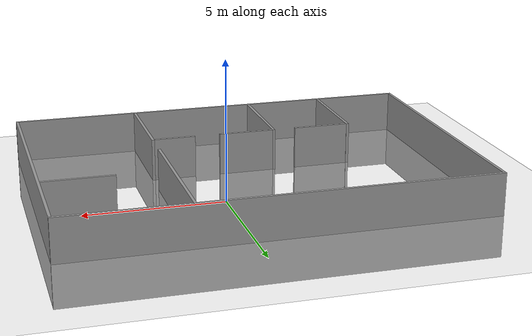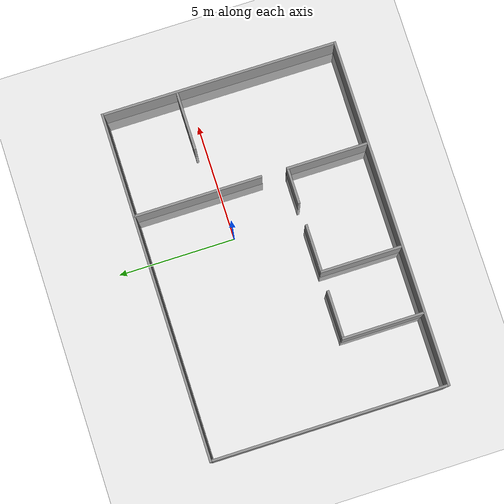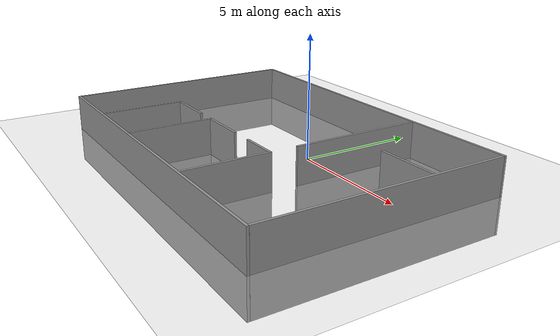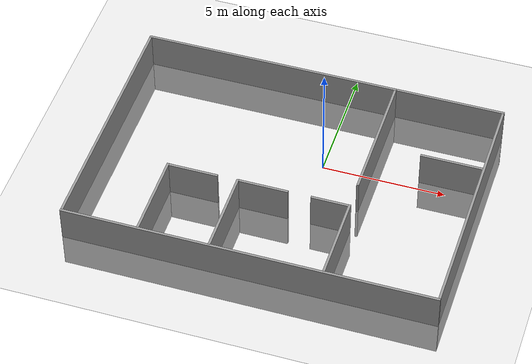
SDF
<sdf version="1.6">
 <world name="default">
  <model name="ground_plane">
   <static>1</static>
   <link name="link">
    <collision name="collision">
     <geometry><plane><normal>0 0 1</normal><size>100 100</size></plane></geometry>
     <surface><friction><ode><mu>100</mu><mu2>50</mu2></ode></friction></surface>
    </collision>
    <visual name="visual">
     <cast_shadows>0</cast_shadows>
     <geometry><plane><normal>0 0 1</normal><size>100 100</size></plane></geometry>
     <material>
      <script><uri>file://media/materials/scripts/gazebo.material</uri><name>Gazebo/Grey</name></script>
     </material>
    </visual>
   </link>
  </model>
  <model name="unit_box">
   <link name="link">
    <inertial>
     <mass>1</mass>
     <inertia>
      <ixx>0.166667</ixx>
      <ixy>0</ixy>
      <ixz>0</ixz>
      <iyy>0.166667</iyy>
      <iyz>0</iyz>
      <izz>0.166667</izz>
     </inertia>
    </inertial>
    <visual name="visual">
     <geometry><box><size>15 0.1 3</size></box></geometry>
     <material>
      <script><name>Gazebo/Grey</name><uri>file://media/materials/scripts/gazebo.material</uri></script>
      <shader type="vertex"><normal_map>__default__</normal_map></shader>
      <ambient>0.3 0.3 0.3 1</ambient>
      <diffuse>0.7 0.7 0.7 1</diffuse>
      <specular>0.01 0.01 0.01 1</specular>
      <emissive>0 0 0 1</emissive>
     </material>
    </visual>
    <collision name="collision">
     <geometry><box><size>15 0.1 3</size></box></geometry>
     <surface>
      <friction>
       <ode><mu>1</mu><mu2>1</mu2><fdir1>0 0 0</fdir1><slip1>0</slip1><slip2>0</slip2></ode>
       <torsional>
        <coefficient>1</coefficient>
        <patch_radius>0</patch_radius>
        <surface_radius>0</surface_radius>
        <use_patch_radius>1</use_patch_radius>
        <ode><slip>0</slip></ode>
       </torsional>
      </friction>
      <bounce><restitution_coefficient>0</restitution_coefficient><threshold>1e+06</threshold></bounce>
      <contact>
       <collide_without_contact>0</collide_without_contact>
       <collide_without_contact_bitmask>1</collide_without_contact_bitmask>
       <collide_bitmask>1</collide_bitmask>
       <ode>
        <soft_cfm>0</soft_cfm>
        <soft_erp>0.2</soft_erp>
        <kp>1e+13</kp>
        <kd>1</kd>
        <max_vel>0.01</max_vel>
        <min_depth>0</min_depth>
       </ode>
       <bullet>
        <split_impulse>1</split_impulse>
        <split_impulse_penetration_threshold>-0.01</split_impulse_penetration_threshold>
        <soft_cfm>0</soft_cfm>
        <soft_erp>0.2</soft_erp>
        <kp>1e+13</kp>
        <kd>1</kd>
       </bullet>
      </contact>
     </surface>
    </collision>
   </link>
   <link name="link_clone">
    <inertial>
     <mass>1</mass>
     <inertia>
      <ixx>0.166667</ixx>
      <ixy>0</ixy>
      <ixz>0</ixz>
      <iyy>0.166667</iyy>
      <iyz>0</iyz>
      <izz>0.166667</izz>
     </inertia>
    </inertial>
    <pose>-0.009482 -10.0996 0 0 -0 0</pose>
    <visual name="visual">
     <geometry><box><size>15 0.1 3</size></box></geometry>
     <material>
      <script><name>Gazebo/Grey</name><uri>file://media/materials/scripts/gazebo.material</uri></script>
      <shader type="vertex"><normal_map>__default__</normal_map></shader>
      <ambient>0.3 0.3 0.3 1</ambient>
      <diffuse>0.7 0.7 0.7 1</diffuse>
      <specular>0.01 0.01 0.01 1</specular>
      <emissive>0 0 0 1</emissive>
     </material>
    </visual>
    <collision name="collision">
     <geometry><box><size>15 0.1 3</size></box></geometry>
     <surface>
      <friction>
       <ode><mu>1</mu><mu2>1</mu2><fdir1>0 0 0</fdir1><slip1>0</slip1><slip2>0</slip2></ode>
       <torsional>
        <coefficient>1</coefficient>
        <patch_radius>0</patch_radius>
        <surface_radius>0</surface_radius>
        <use_patch_radius>1</use_patch_radius>
        <ode><slip>0</slip></ode>
       </torsional>
      </friction>
      <bounce><restitution_coefficient>0</restitution_coefficient><threshold>1e+06</threshold></bounce>
      <contact>
       <collide_without_contact>0</collide_without_contact>
       <collide_without_contact_bitmask>1</collide_without_contact_bitmask>
       <collide_bitmask>1</collide_bitmask>
       <ode>
        <soft_cfm>0</soft_cfm>
        <soft_erp>0.2</soft_erp>
        <kp>1e+13</kp>
        <kd>1</kd>
        <max_vel>0.01</max_vel>
        <min_depth>0</min_depth>
       </ode>
       <bullet>
        <split_impulse>1</split_impulse>
        <split_impulse_penetration_threshold>-0.01</split_impulse_penetration_threshold>
        <soft_cfm>0</soft_cfm>
        <soft_erp>0.2</soft_erp>
        <kp>1e+13</kp>
        <kd>1</kd>
       </bullet>
      </contact>
     </surface>
    </collision>
   </link>
   <link name="link_clone_0">
    <inertial>
     <mass>1</mass>
     <inertia>
      <ixx>0.166667</ixx>
      <ixy>0</ixy>
      <ixz>0</ixz>
      <iyy>0.166667</iyy>
      <iyz>0</iyz>
      <izz>0.166667</izz>
     </inertia>
    </inertial>
    <pose>-7.45497 -5.04923 0 0 -0 0</pose>
    <visual name="visual">
     <geometry><box><size>10 0.1 3</size></box></geometry>
     <material>
      <script><name>Gazebo/Grey</name><uri>file://media/materials/scripts/gazebo.material</uri></script>
      <shader type="vertex"><normal_map>__default__</normal_map></shader>
      <ambient>0.3 0.3 0.3 1</ambient>
      <diffuse>0.7 0.7 0.7 1</diffuse>
      <specular>0.01 0.01 0.01 1</specular>
      <emissive>0 0 0 1</emissive>
     </material>
     <pose>0 0 0 0 -0 1.57</pose>
    </visual>
    <collision name="collision">
     <pose>0 0 0 0 -0 1.57</pose>
     <geometry><box><size>10 0.1 3</size></box></geometry>
     <surface>
      <friction>
       <ode><mu>1</mu><mu2>1</mu2><fdir1>0 0 0</fdir1><slip1>0</slip1><slip2>0</slip2></ode>
       <torsional>
        <coefficient>1</coefficient>
        <patch_radius>0</patch_radius>
        <surface_radius>0</surface_radius>
        <use_patch_radius>1</use_patch_radius>
        <ode><slip>0</slip></ode>
       </torsional>
      </friction>
      <bounce><restitution_coefficient>0</restitution_coefficient><threshold>1e+06</threshold></bounce>
      <contact>
       <collide_without_contact>0</collide_without_contact>
       <collide_without_contact_bitmask>1</collide_without_contact_bitmask>
       <collide_bitmask>1</collide_bitmask>
       <ode>
        <soft_cfm>0</soft_cfm>
        <soft_erp>0.2</soft_erp>
        <kp>1e+13</kp>
        <kd>1</kd>
        <max_vel>0.01</max_vel>
        <min_depth>0</min_depth>
       </ode>
       <bullet>
        <split_impulse>1</split_impulse>
        <split_impulse_penetration_threshold>-0.01</split_impulse_penetration_threshold>
        <soft_cfm>0</soft_cfm>
        <soft_erp>0.2</soft_erp>
        <kp>1e+13</kp>
        <kd>1</kd>
       </bullet>
      </contact>
     </surface>
    </collision>
   </link>
   <link name="link_clone_0_clone">
    <inertial>
     <mass>1</mass>
     <inertia>
      <ixx>0.166667</ixx>
      <ixy>0</ixy>
      <ixz>0</ixz>
      <iyy>0.166667</iyy>
      <iyz>0</iyz>
      <izz>0.166667</izz>
     </inertia>
    </inertial>
    <pose>7.44581 -5.0508 0 0 -0 0</pose>
    <visual name="visual">
     <geometry><box><size>10 0.1 3</size></box></geometry>
     <material>
      <script><name>Gazebo/Grey</name><uri>file://media/materials/scripts/gazebo.material</uri></script>
      <shader type="vertex"><normal_map>__default__</normal_map></shader>
      <ambient>0.3 0.3 0.3 1</ambient>
      <diffuse>0.7 0.7 0.7 1</diffuse>
      <specular>0.01 0.01 0.01 1</specular>
      <emissive>0 0 0 1</emissive>
     </material>
     <pose>0 0 0 0 -0 1.57</pose>
    </visual>
    <collision name="collision">
     <pose>0 0 0 0 -0 1.57</pose>
     <geometry><box><size>10 0.1 3</size></box></geometry>
     <surface>
      <friction>
       <ode><mu>1</mu><mu2>1</mu2><fdir1>0 0 0</fdir1><slip1>0</slip1><slip2>0</slip2></ode>
       <torsional>
        <coefficient>1</coefficient>
        <patch_radius>0</patch_radius>
        <surface_radius>0</surface_radius>
        <use_patch_radius>1</use_patch_radius>
        <ode><slip>0</slip></ode>
       </torsional>
      </friction>
      <bounce><restitution_coefficient>0</restitution_coefficient><threshold>1e+06</threshold></bounce>
      <contact>
       <collide_without_contact>0</collide_without_contact>
       <collide_without_contact_bitmask>1</collide_without_contact_bitmask>
       <collide_bitmask>1</collide_bitmask>
       <ode>
        <soft_cfm>0</soft_cfm>
        <soft_erp>0.2</soft_erp>
        <kp>1e+13</kp>
        <kd>1</kd>
        <max_vel>0.01</max_vel>
        <min_depth>0</min_depth>
       </ode>
       <bullet>
        <split_impulse>1</split_impulse>
        <split_impulse_penetration_threshold>-0.01</split_impulse_penetration_threshold>
        <soft_cfm>0</soft_cfm>
        <soft_erp>0.2</soft_erp>
        <kp>1e+13</kp>
        <kd>1</kd>
       </bullet>
      </contact>
     </surface>
    </collision>
   </link>
   <link name="link_clone_0_clone_0_clone">
    <inertial>
     <mass>1</mass>
     <inertia>
      <ixx>0.166667</ixx>
      <ixy>0</ixy>
      <ixz>0</ixz>
      <iyy>0.166667</iyy>
      <iyz>0</iyz>
      <izz>0.166667</izz>
     </inertia>
    </inertial>
    <pose>2.99854 -2.74784 0 0 -0 0</pose>
    <visual name="visual">
     <geometry><box><size>5.5 0.1 3</size></box></geometry>
     <material>
      <script><name>Gazebo/Grey</name><uri>file://media/materials/scripts/gazebo.material</uri></script>
      <shader type="vertex"><normal_map>__default__</normal_map></shader>
      <ambient>0.3 0.3 0.3 1</ambient>
      <diffuse>0.7 0.7 0.7 1</diffuse>
      <specular>0.01 0.01 0.01 1</specular>
      <emissive>0 0 0 1</emissive>
     </material>
     <pose>0 0 0 0 -0 1.57</pose>
    </visual>
    <collision name="collision">
     <pose>0 0 0 0 -0 1.57</pose>
     <geometry><box><size>5.5 0.1 3</size></box></geometry>
     <surface>
      <friction>
       <ode><mu>1</mu><mu2>1</mu2><fdir1>0 0 0</fdir1><slip1>0</slip1><slip2>0</slip2></ode>
       <torsional>
        <coefficient>1</coefficient>
        <patch_radius>0</patch_radius>
        <surface_radius>0</surface_radius>
        <use_patch_radius>1</use_patch_radius>
        <ode><slip>0</slip></ode>
       </torsional>
      </friction>
      <bounce><restitution_coefficient>0</restitution_coefficient><threshold>1e+06</threshold></bounce>
      <contact>
       <collide_without_contact>0</collide_without_contact>
       <collide_without_contact_bitmask>1</collide_without_contact_bitmask>
       <collide_bitmask>1</collide_bitmask>
       <ode>
        <soft_cfm>0</soft_cfm>
        <soft_erp>0.2</soft_erp>
        <kp>1e+13</kp>
        <kd>1</kd>
        <max_vel>0.01</max_vel>
        <min_depth>0</min_depth>
       </ode>
       <bullet>
        <split_impulse>1</split_impulse>
        <split_impulse_penetration_threshold>-0.01</split_impulse_penetration_threshold>
        <soft_cfm>0</soft_cfm>
        <soft_erp>0.2</soft_erp>
        <kp>1e+13</kp>
        <kd>1</kd>
       </bullet>
      </contact>
     </surface>
    </collision>
   </link>
   <link name="link_clone_0_clone_0_clone_clone">
    <inertial>
     <mass>1</mass>
     <inertia>
      <ixx>0.166667</ixx>
      <ixy>0</ixy>
      <ixz>0</ixz>
      <iyy>0.166667</iyy>
      <iyz>0</iyz>
      <izz>0.166667</izz>
     </inertia>
    </inertial>
    <pose>2.99159 -8.31128 0 0 -0 0</pose>
    <visual name="visual">
     <geometry><box><size>3.5 0.1 3</size></box></geometry>
     <material>
      <script><name>Gazebo/Grey</name><uri>file://media/materials/scripts/gazebo.material</uri></script>
      <shader type="vertex"><normal_map>__default__</normal_map></shader>
      <ambient>0.3 0.3 0.3 1</ambient>
      <diffuse>0.7 0.7 0.7 1</diffuse>
      <specular>0.01 0.01 0.01 1</specular>
      <emissive>0 0 0 1</emissive>
     </material>
     <pose>0 0 0 0 -0 1.57</pose>
    </visual>
    <collision name="collision">
     <pose>0 0 0 0 -0 1.57</pose>
     <geometry><box><size>3.5 0.1 3</size></box></geometry>
     <surface>
      <friction>
       <ode><mu>1</mu><mu2>1</mu2><fdir1>0 0 0</fdir1><slip1>0</slip1><slip2>0</slip2></ode>
       <torsional>
        <coefficient>1</coefficient>
        <patch_radius>0</patch_radius>
        <surface_radius>0</surface_radius>
        <use_patch_radius>1</use_patch_radius>
        <ode><slip>0</slip></ode>
       </torsional>
      </friction>
      <bounce><restitution_coefficient>0</restitution_coefficient><threshold>1e+06</threshold></bounce>
      <contact>
       <collide_without_contact>0</collide_without_contact>
       <collide_without_contact_bitmask>1</collide_without_contact_bitmask>
       <collide_bitmask>1</collide_bitmask>
       <ode>
        <soft_cfm>0</soft_cfm>
        <soft_erp>0.2</soft_erp>
        <kp>1e+13</kp>
        <kd>1</kd>
        <max_vel>0.01</max_vel>
        <min_depth>0</min_depth>
       </ode>
       <bullet>
        <split_impulse>1</split_impulse>
        <split_impulse_penetration_threshold>-0.01</split_impulse_penetration_threshold>
        <soft_cfm>0</soft_cfm>
        <soft_erp>0.2</soft_erp>
        <kp>1e+13</kp>
        <kd>1</kd>
       </bullet>
      </contact>
     </surface>
    </collision>
   </link>
   <link name="link_clone_0_clone_0_clone_clone_clone">
    <inertial>
     <mass>1</mass>
     <inertia>
      <ixx>0.166667</ixx>
      <ixy>0</ixy>
      <ixz>0</ixz>
      <iyy>0.166667</iyy>
      <iyz>0</iyz>
      <izz>0.166667</izz>
     </inertia>
    </inertial>
    <pose>-1.51188 -8.32131 0 0 -0 0</pose>
    <visual name="visual">
     <geometry><box><size>3.5 0.1 3</size></box></geometry>
     <material>
      <script><name>Gazebo/Grey</name><uri>file://media/materials/scripts/gazebo.material</uri></script>
      <shader type="vertex"><normal_map>__default__</normal_map></shader>
      <ambient>0.3 0.3 0.3 1</ambient>
      <diffuse>0.7 0.7 0.7 1</diffuse>
      <specular>0.01 0.01 0.01 1</specular>
      <emissive>0 0 0 1</emissive>
     </material>
     <pose>0 0 0 0 -0 1.57</pose>
    </visual>
    <collision name="collision">
     <pose>0 0 0 0 -0 1.57</pose>
     <geometry><box><size>3.5 0.1 3</size></box></geometry>
     <surface>
      <friction>
       <ode><mu>1</mu><mu2>1</mu2><fdir1>0 0 0</fdir1><slip1>0</slip1><slip2>0</slip2></ode>
       <torsional>
        <coefficient>1</coefficient>
        <patch_radius>0</patch_radius>
        <surface_radius>0</surface_radius>
        <use_patch_radius>1</use_patch_radius>
        <ode><slip>0</slip></ode>
       </torsional>
      </friction>
      <bounce><restitution_coefficient>0</restitution_coefficient><threshold>1e+06</threshold></bounce>
      <contact>
       <collide_without_contact>0</collide_without_contact>
       <collide_without_contact_bitmask>1</collide_without_contact_bitmask>
       <collide_bitmask>1</collide_bitmask>
       <ode>
        <soft_cfm>0</soft_cfm>
        <soft_erp>0.2</soft_erp>
        <kp>1e+13</kp>
        <kd>1</kd>
        <max_vel>0.01</max_vel>
        <min_depth>0</min_depth>
       </ode>
       <bullet>
        <split_impulse>1</split_impulse>
        <split_impulse_penetration_threshold>-0.01</split_impulse_penetration_threshold>
        <soft_cfm>0</soft_cfm>
        <soft_erp>0.2</soft_erp>
        <kp>1e+13</kp>
        <kd>1</kd>
       </bullet>
      </contact>
     </surface>
    </collision>
   </link>
   <link name="link_clone_0_clone_0_clone_clone_clone_clone">
    <inertial>
     <mass>1</mass>
     <inertia>
      <ixx>0.166667</ixx>
      <ixy>0</ixy>
      <ixz>0</ixz>
      <iyy>0.166667</iyy>
      <iyz>0</iyz>
      <izz>0.166667</izz>
     </inertia>
    </inertial>
    <pose>-4.37326 -8.31642 0 0 -0 0</pose>
    <visual name="visual">
     <geometry><box><size>3.5 0.1 3</size></box></geometry>
     <material>
      <script><name>Gazebo/Grey</name><uri>file://media/materials/scripts/gazebo.material</uri></script>
      <shader type="vertex"><normal_map>__default__</normal_map></shader>
      <ambient>0.3 0.3 0.3 1</ambient>
      <diffuse>0.7 0.7 0.7 1</diffuse>
      <specular>0.01 0.01 0.01 1</specular>
      <emissive>0 0 0 1</emissive>
     </material>
     <pose>0 0 0 0 -0 1.57</pose>
    </visual>
    <collision name="collision">
     <pose>0 0 0 0 -0 1.57</pose>
     <geometry><box><size>3.5 0.1 3</size></box></geometry>
     <surface>
      <friction>
       <ode><mu>1</mu><mu2>1</mu2><fdir1>0 0 0</fdir1><slip1>0</slip1><slip2>0</slip2></ode>
       <torsional>
        <coefficient>1</coefficient>
        <patch_radius>0</patch_radius>
        <surface_radius>0</surface_radius>
        <use_patch_radius>1</use_patch_radius>
        <ode><slip>0</slip></ode>
       </torsional>
      </friction>
      <bounce><restitution_coefficient>0</restitution_coefficient><threshold>1e+06</threshold></bounce>
      <contact>
       <collide_without_contact>0</collide_without_contact>
       <collide_without_contact_bitmask>1</collide_without_contact_bitmask>
       <collide_bitmask>1</collide_bitmask>
       <ode>
        <soft_cfm>0</soft_cfm>
        <soft_erp>0.2</soft_erp>
        <kp>1e+13</kp>
        <kd>1</kd>
        <max_vel>0.01</max_vel>
        <min_depth>0</min_depth>
       </ode>
       <bullet>
        <split_impulse>1</split_impulse>
        <split_impulse_penetration_threshold>-0.01</split_impulse_penetration_threshold>
        <soft_cfm>0</soft_cfm>
        <soft_erp>0.2</soft_erp>
        <kp>1e+13</kp>
        <kd>1</kd>
       </bullet>
      </contact>
     </surface>
    </collision>
   </link>
   <link name="link_clone_clone_clone_0_clone_0">
    <inertial>
     <mass>1</mass>
     <inertia>
      <ixx>0.166667</ixx>
      <ixy>0</ixy>
      <ixz>0</ixz>
      <iyy>0.166667</iyy>
      <iyz>0</iyz>
      <izz>0.166667</izz>
     </inertia>
    </inertial>
    <pose>-0.467226 -6.6165 0 0 -0 0</pose>
    <visual name="visual">
     <geometry><box><size>2 0.1 3</size></box></geometry>
     <material>
      <script><name>Gazebo/Grey</name><uri>file://media/materials/scripts/gazebo.material</uri></script>
      <shader type="vertex"><normal_map>__default__</normal_map></shader>
      <ambient>0.3 0.3 0.3 1</ambient>
      <diffuse>0.7 0.7 0.7 1</diffuse>
      <specular>0.01 0.01 0.01 1</specular>
      <emissive>0 0 0 1</emissive>
     </material>
    </visual>
    <collision name="collision">
     <geometry><box><size>2 0.1 3</size></box></geometry>
     <surface>
      <friction>
       <ode><mu>1</mu><mu2>1</mu2><fdir1>0 0 0</fdir1><slip1>0</slip1><slip2>0</slip2></ode>
       <torsional>
        <coefficient>1</coefficient>
        <patch_radius>0</patch_radius>
        <surface_radius>0</surface_radius>
        <use_patch_radius>1</use_patch_radius>
        <ode><slip>0</slip></ode>
       </torsional>
      </friction>
      <bounce><restitution_coefficient>0</restitution_coefficient><threshold>1e+06</threshold></bounce>
      <contact>
       <collide_without_contact>0</collide_without_contact>
       <collide_without_contact_bitmask>1</collide_without_contact_bitmask>
       <collide_bitmask>1</collide_bitmask>
       <ode>
        <soft_cfm>0</soft_cfm>
        <soft_erp>0.2</soft_erp>
        <kp>1e+13</kp>
        <kd>1</kd>
        <max_vel>0.01</max_vel>
        <min_depth>0</min_depth>
       </ode>
       <bullet>
        <split_impulse>1</split_impulse>
        <split_impulse_penetration_threshold>-0.01</split_impulse_penetration_threshold>
        <soft_cfm>0</soft_cfm>
        <soft_erp>0.2</soft_erp>
        <kp>1e+13</kp>
        <kd>1</kd>
       </bullet>
      </contact>
     </surface>
    </collision>
   </link>
   <link name="link_clone_clone_clone_0_clone_0_clone">
    <inertial>
     <mass>1</mass>
     <inertia>
      <ixx>0.166667</ixx>
      <ixy>0</ixy>
      <ixz>0</ixz>
      <iyy>0.166667</iyy>
      <iyz>0</iyz>
      <izz>0.166667</izz>
     </inertia>
    </inertial>
    <pose>2.19706 -6.61483 0 0 -0 0</pose>
    <visual name="visual">
     <geometry><box><size>1.5 0.1 3</size></box></geometry>
     <material>
      <script><name>Gazebo/Grey</name><uri>file://media/materials/scripts/gazebo.material</uri></script>
      <shader type="vertex"><normal_map>__default__</normal_map></shader>
      <ambient>0.3 0.3 0.3 1</ambient>
      <diffuse>0.7 0.7 0.7 1</diffuse>
      <specular>0.01 0.01 0.01 1</specular>
      <emissive>0 0 0 1</emissive>
     </material>
    </visual>
    <collision name="collision">
     <geometry><box><size>1.5 0.1 3</size></box></geometry>
     <surface>
      <friction>
       <ode><mu>1</mu><mu2>1</mu2><fdir1>0 0 0</fdir1><slip1>0</slip1><slip2>0</slip2></ode>
       <torsional>
        <coefficient>1</coefficient>
        <patch_radius>0</patch_radius>
        <surface_radius>0</surface_radius>
        <use_patch_radius>1</use_patch_radius>
        <ode><slip>0</slip></ode>
       </torsional>
      </friction>
      <bounce><restitution_coefficient>0</restitution_coefficient><threshold>1e+06</threshold></bounce>
      <contact>
       <collide_without_contact>0</collide_without_contact>
       <collide_without_contact_bitmask>1</collide_without_contact_bitmask>
       <collide_bitmask>1</collide_bitmask>
       <ode>
        <soft_cfm>0</soft_cfm>
        <soft_erp>0.2</soft_erp>
        <kp>1e+13</kp>
        <kd>1</kd>
        <max_vel>0.01</max_vel>
        <min_depth>0</min_depth>
       </ode>
       <bullet>
        <split_impulse>1</split_impulse>
        <split_impulse_penetration_threshold>-0.01</split_impulse_penetration_threshold>
        <soft_cfm>0</soft_cfm>
        <soft_erp>0.2</soft_erp>
        <kp>1e+13</kp>
        <kd>1</kd>
       </bullet>
      </contact>
     </surface>
    </collision>
   </link>
   <link name="link_clone_clone_clone_0_clone_0_clone_clone">
    <inertial>
     <mass>1</mass>
     <inertia>
      <ixx>0.166667</ixx>
      <ixy>0</ixy>
      <ixz>0</ixz>
      <iyy>0.166667</iyy>
      <iyz>0</iyz>
      <izz>0.166667</izz>
     </inertia>
    </inertial>
    <pose>6.15216 -3.21874 0 0 -0 0</pose>
    <visual name="visual">
     <geometry><box><size>2.5 0.1 3</size></box></geometry>
     <material>
      <script><name>Gazebo/Grey</name><uri>file://media/materials/scripts/gazebo.material</uri></script>
      <shader type="vertex"><normal_map>__default__</normal_map></shader>
      <ambient>0.3 0.3 0.3 1</ambient>
      <diffuse>0.7 0.7 0.7 1</diffuse>
      <specular>0.01 0.01 0.01 1</specular>
      <emissive>0 0 0 1</emissive>
     </material>
    </visual>
    <collision name="collision">
     <geometry><box><size>2.5 0.1 3</size></box></geometry>
     <surface>
      <friction>
       <ode><mu>1</mu><mu2>1</mu2><fdir1>0 0 0</fdir1><slip1>0</slip1><slip2>0</slip2></ode>
       <torsional>
        <coefficient>1</coefficient>
        <patch_radius>0</patch_radius>
        <surface_radius>0</surface_radius>
        <use_patch_radius>1</use_patch_radius>
        <ode><slip>0</slip></ode>
       </torsional>
      </friction>
      <bounce><restitution_coefficient>0</restitution_coefficient><threshold>1e+06</threshold></bounce>
      <contact>
       <collide_without_contact>0</collide_without_contact>
       <collide_without_contact_bitmask>1</collide_without_contact_bitmask>
       <collide_bitmask>1</collide_bitmask>
       <ode>
        <soft_cfm>0</soft_cfm>
        <soft_erp>0.2</soft_erp>
        <kp>1e+13</kp>
        <kd>1</kd>
        <max_vel>0.01</max_vel>
        <min_depth>0</min_depth>
       </ode>
       <bullet>
        <split_impulse>1</split_impulse>
        <split_impulse_penetration_threshold>-0.01</split_impulse_penetration_threshold>
        <soft_cfm>0</soft_cfm>
        <soft_erp>0.2</soft_erp>
        <kp>1e+13</kp>
        <kd>1</kd>
       </bullet>
      </contact>
     </surface>
    </collision>
   </link>
   <link name="link_clone_clone_clone_0_clone_clone_clone_0">
    <inertial>
     <mass>1</mass>
     <inertia>
      <ixx>0.166667</ixx>
      <ixy>0</ixy>
      <ixz>0</ixz>
      <iyy>0.166667</iyy>
      <iyz>0</iyz>
      <izz>0.166667</izz>
     </inertia>
    </inertial>
    <pose>-3.32109 -6.62315 0 0 -0 0</pose>
    <visual name="visual">
     <geometry><box><size>2 0.1 3</size></box></geometry>
     <material>
      <script><name>Gazebo/Grey</name><uri>file://media/materials/scripts/gazebo.material</uri></script>
      <shader type="vertex"><normal_map>__default__</normal_map></shader>
      <ambient>0.3 0.3 0.3 1</ambient>
      <diffuse>0.7 0.7 0.7 1</diffuse>
      <specular>0.01 0.01 0.01 1</specular>
      <emissive>0 0 0 1</emissive>
     </material>
    </visual>
    <collision name="collision">
     <geometry><box><size>2 0.1 3</size></box></geometry>
     <surface>
      <friction>
       <ode><mu>1</mu><mu2>1</mu2><fdir1>0 0 0</fdir1><slip1>0</slip1><slip2>0</slip2></ode>
       <torsional>
        <coefficient>1</coefficient>
        <patch_radius>0</patch_radius>
        <surface_radius>0</surface_radius>
        <use_patch_radius>1</use_patch_radius>
        <ode><slip>0</slip></ode>
       </torsional>
      </friction>
      <bounce><restitution_coefficient>0</restitution_coefficient><threshold>1e+06</threshold></bounce>
      <contact>
       <collide_without_contact>0</collide_without_contact>
       <collide_without_contact_bitmask>1</collide_without_contact_bitmask>
       <collide_bitmask>1</collide_bitmask>
       <ode>
        <soft_cfm>0</soft_cfm>
        <soft_erp>0.2</soft_erp>
        <kp>1e+13</kp>
        <kd>1</kd>
        <max_vel>0.01</max_vel>
        <min_depth>0</min_depth>
       </ode>
       <bullet>
        <split_impulse>1</split_impulse>
        <split_impulse_penetration_threshold>-0.01</split_impulse_penetration_threshold>
        <soft_cfm>0</soft_cfm>
        <soft_erp>0.2</soft_erp>
        <kp>1e+13</kp>
        <kd>1</kd>
       </bullet>
      </contact>
     </surface>
    </collision>
   </link>
   <static>1</static>
   <pose>-1.06329 3.66409 0 0 -0 0</pose>
  </model>
 </world>
</sdf>
